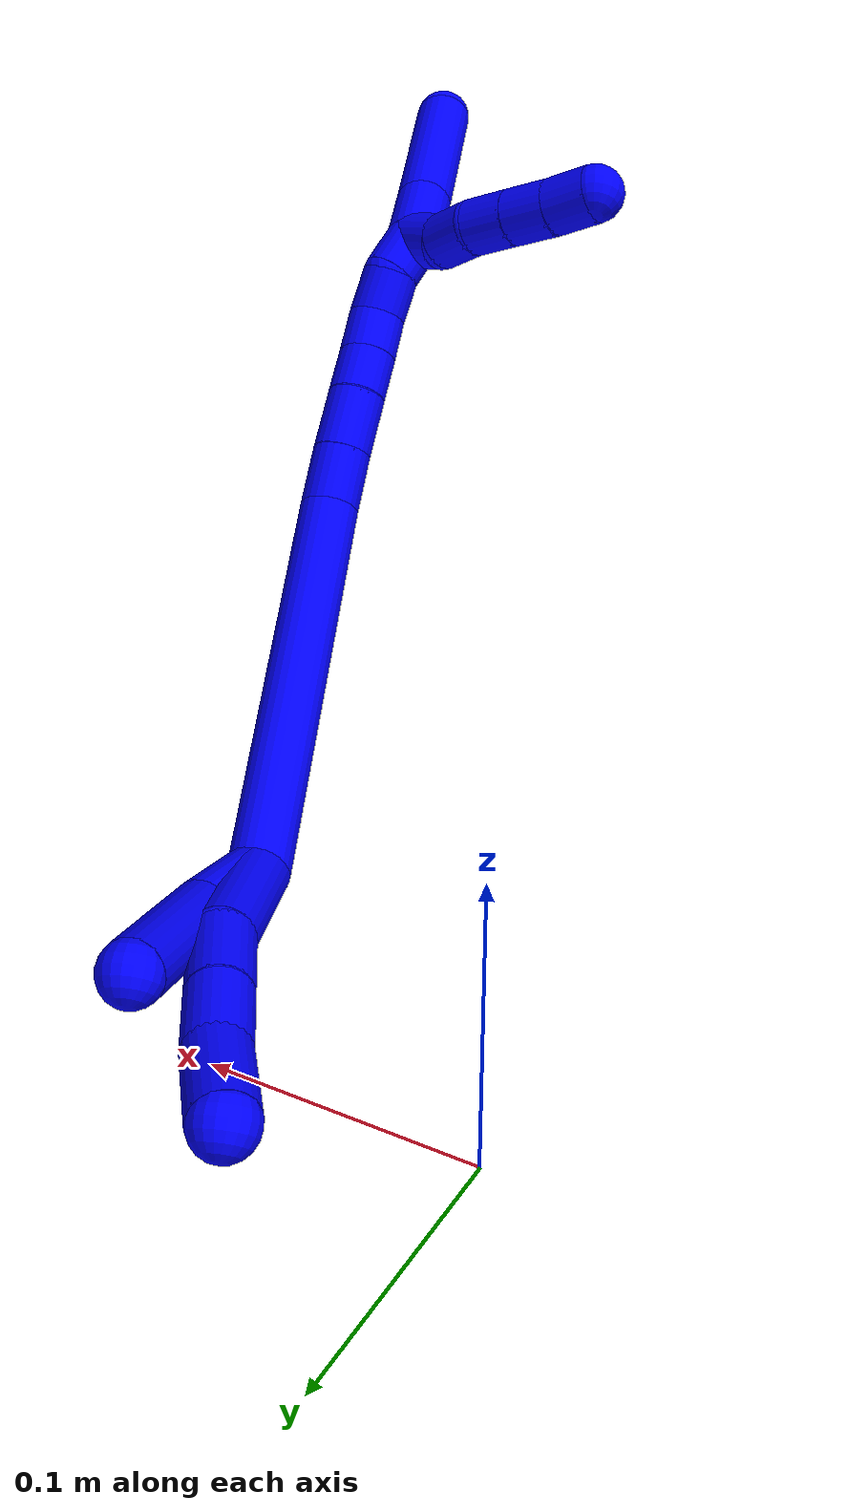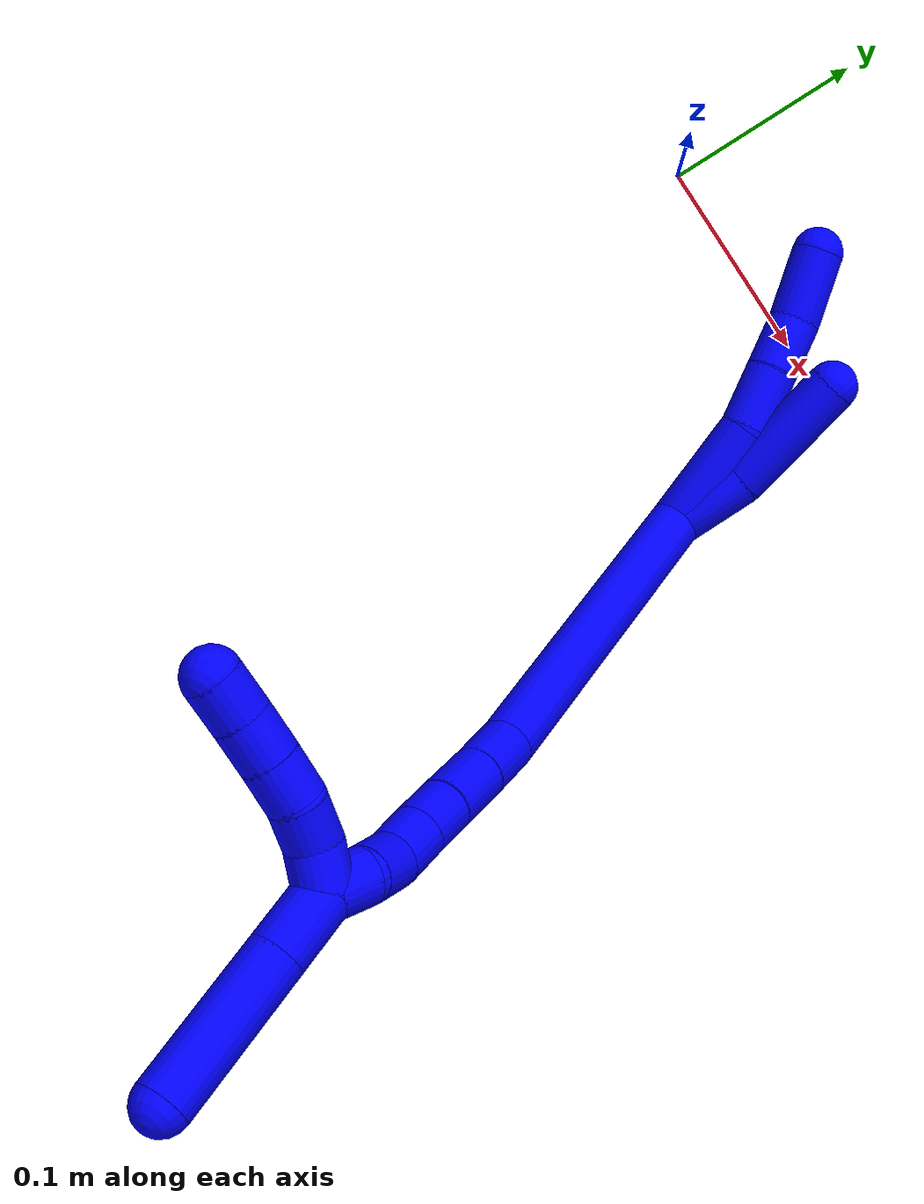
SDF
<sdf version="1.7">
 <world name="default">
  <plugin name="TubeGeneratorPlugin" filename="libtube_generator_plugin.so"/>
  <model name="photoneo_s_sensor">
   <static>1</static>
   <pose>0 0 2 1.57079 1.57079 3.14159</pose>
   <link name="link">
    <inertial><mass>0.1</mass></inertial>
    <sensor name="sensor" type="depth">
     <update_rate>30</update_rate>
     <camera>
      <horizontal_fov>1.22</horizontal_fov>
      <image><width>1920</width><height>1200</height><format>B8G8R8</format></image>
      <clip><near>0.1</near><far>4</far></clip>
      <depth_camera><output>points</output></depth_camera>
     </camera>
     <plugin name="camera_plugin" filename="libgazebo_ros_depth_camera.so">
      <baseline>0.2</baseline>
      <alwaysOn>1</alwaysOn>
      <updateRate>0.0</updateRate>
      <cameraName>camera_ir</cameraName>
      <imageTopicName>/camera/color/image_raw</imageTopicName>
      <cameraInfoTopicName>/camera/color/camera_info</cameraInfoTopicName>
      <depthImageTopicName>/camera/depth/image_raw</depthImageTopicName>
      <depthImageCameraInfoTopicName>/camera/depth/camera_info</depthImageCameraInfoTopicName>
      <pointCloudTopicName>/camera/depth/points</pointCloudTopicName>
      <frameName>fr_optical</frameName>
      <pointCloudCutoff>0.1</pointCloudCutoff>
      <pointCloudCutoffMax>2.0</pointCloudCutoffMax>
      <distortionK1>0</distortionK1>
      <distortionK2>0</distortionK2>
      <distortionK3>0</distortionK3>
      <distortionT1>0</distortionT1>
      <distortionT2>0</distortionT2>
      <CxPrime>0</CxPrime>
      <Cx>0</Cx>
      <Cy>0</Cy>
      <focalLength>0</focalLength>
      <hackBaseline>0</hackBaseline>
     </plugin>
    </sensor>
   </link>
  </model>
  <gravity>0 0 -9.8</gravity>
  <magnetic_field>6e-06 2.3e-05 -4.2e-05</magnetic_field>
  <atmosphere type="adiabatic"/>
  <physics name="default_physics" default="0" type="ode">
   <max_step_size>0.003</max_step_size>
   <real_time_factor>1</real_time_factor>
   <real_time_update_rate>1000</real_time_update_rate>
   <max_contacts>10000</max_contacts>
   <ode>
    <solver>
     <type>quick</type>
     <iters>100</iters>
     <sor>1.3</sor>
     <use_dynamic_moi_rescaling>0</use_dynamic_moi_rescaling>
    </solver>
    <constraints>
     <contact_max_correcting_vel>0</contact_max_correcting_vel>
     <contact_surface_layer>0.001</contact_surface_layer>
     <cfm>0</cfm>
     <erp>0.2</erp>
    </constraints>
   </ode>
  </physics>
  <scene><ambient>0.4 0.4 0.4 1</ambient><background>0.7 0.7 0.7 1</background><shadows>0</shadows></scene>
  <audio><device>default</device></audio>
  <spherical_coordinates>
   <surface_model>EARTH_WGS84</surface_model>
   <latitude_deg>0</latitude_deg>
   <longitude_deg>0</longitude_deg>
   <elevation>0</elevation>
   <heading_deg>0</heading_deg>
  </spherical_coordinates>
  <model name="bin">
   <static>1</static>
   <link name="bottom">
    <collision name="collision-bottom">
     <pose>0 0 -0.01 0 -0 0</pose>
     <geometry><box><size>0.8 0.6 0.02</size></box></geometry>
     <surface>
      <friction><ode><mu>100</mu><mu2>100</mu2></ode></friction>
      <contact><collide_bitmask>65535</collide_bitmask></contact>
     </surface>
    </collision>
   </link>
   <link name="west_wall">
    <collision name="collision-west_wall">
     <pose>-0.41 0 0.1 0 -0 0</pose>
     <geometry><box><size>0.02 0.6 0.2</size></box></geometry>
     <surface>
      <friction><ode><mu>100</mu><mu2>100</mu2></ode></friction>
      <contact><collide_bitmask>65535</collide_bitmask></contact>
     </surface>
    </collision>
   </link>
   <link name="east_wall">
    <collision name="collision-east_wall">
     <pose>0.41 0 0.1 0 -0 0</pose>
     <geometry><box><size>0.02 0.6 0.2</size></box></geometry>
     <surface>
      <friction><ode><mu>100</mu><mu2>100</mu2></ode></friction>
      <contact><collide_bitmask>65535</collide_bitmask></contact>
     </surface>
    </collision>
   </link>
   <link name="south_wall">
    <collision name="collision-south_wall">
     <pose>0 -0.31 0.1 0 -0 0</pose>
     <geometry><box><size>0.8 0.02 0.2</size></box></geometry>
     <surface>
      <friction><ode><mu>100</mu><mu2>100</mu2></ode></friction>
      <contact><collide_bitmask>65535</collide_bitmask></contact>
     </surface>
    </collision>
   </link>
   <link name="north_wall">
    <collision name="collision-north_wall">
     <pose>0 0.31 0.1 0 -0 0</pose>
     <geometry><box><size>0.8 0.02 0.2</size></box></geometry>
     <surface>
      <friction><ode><mu>100</mu><mu2>100</mu2></ode></friction>
      <contact><collide_bitmask>65535</collide_bitmask></contact>
     </surface>
    </collision>
   </link>
  </model>
  <model name="1">
   <static>0</static>
   <link name="1">
    <collision name="collision-cylinder-e_1_2_8">
     <pose>-0.006183 0.019629 -0.018541 -2.32771 -0.225097 0.512935</pose>
     <geometry><cylinder><radius>0.0125</radius><length>0.0554</length></cylinder></geometry>
     <surface>
      <friction><ode><mu>1.16</mu><mu2>1.16</mu2><slip1>0</slip1><slip2>0</slip2></ode></friction>
      <contact><ode><kp>1e+06</kp><kd>1</kd><max_vel>0</max_vel><min_depth>0.001</min_depth></ode></contact>
     </surface>
    </collision>
    <visual name="visual-cylinder-e_1_2_8">
     <pose>-0.006183 0.019629 -0.018541 -2.32771 -0.225097 0.512935</pose>
     <geometry><cylinder><radius>0.0125</radius><length>0.0554</length></cylinder></geometry>
     <material><ambient>0 0 1 1</ambient></material>
    </visual>
    <collision name="collision-cylinder-e_2_8_9">
     <pose>-0.018299 0.047221 -0.049178 -2.5593 -0.388859 1.16275</pose>
     <geometry><cylinder><radius>0.0125</radius><length>0.031301</length></cylinder></geometry>
     <surface>
      <friction><ode><mu>1.16</mu><mu2>1.16</mu2><slip1>0</slip1><slip2>0</slip2></ode></friction>
      <contact><ode><kp>1e+06</kp><kd>1</kd><max_vel>0</max_vel><min_depth>0.001</min_depth></ode></contact>
     </surface>
    </collision>
    <visual name="visual-cylinder-e_2_8_9">
     <pose>-0.018299 0.047221 -0.049178 -2.5593 -0.388859 1.16275</pose>
     <geometry><cylinder><radius>0.0125</radius><length>0.031301</length></cylinder></geometry>
     <material><ambient>0 0 1 1</ambient></material>
    </visual>
    <collision name="collision-cylinder-e_3_9_10">
     <pose>-0.029169 0.061439 -0.07242 -2.63035 -0.368563 1.23911</pose>
     <geometry><cylinder><radius>0.0125</radius><length>0.027404</length></cylinder></geometry>
     <surface>
      <friction><ode><mu>1.16</mu><mu2>1.16</mu2><slip1>0</slip1><slip2>0</slip2></ode></friction>
      <contact><ode><kp>1e+06</kp><kd>1</kd><max_vel>0</max_vel><min_depth>0.001</min_depth></ode></contact>
     </surface>
    </collision>
    <visual name="visual-cylinder-e_3_9_10">
     <pose>-0.029169 0.061439 -0.07242 -2.63035 -0.368563 1.23911</pose>
     <geometry><cylinder><radius>0.0125</radius><length>0.027404</length></cylinder></geometry>
     <material><ambient>0 0 1 1</ambient></material>
    </visual>
    <collision name="collision-cylinder-e_4_10_6">
     <pose>-0.042792 0.076968 -0.096242 -2.50986 -0.50524 1.33706</pose>
     <geometry><cylinder><radius>0.0125</radius><length>0.035896</length></cylinder></geometry>
     <surface>
      <friction><ode><mu>1.16</mu><mu2>1.16</mu2><slip1>0</slip1><slip2>0</slip2></ode></friction>
      <contact><ode><kp>1e+06</kp><kd>1</kd><max_vel>0</max_vel><min_depth>0.001</min_depth></ode></contact>
     </surface>
    </collision>
    <visual name="visual-cylinder-e_4_10_6">
     <pose>-0.042792 0.076968 -0.096242 -2.50986 -0.50524 1.33706</pose>
     <geometry><cylinder><radius>0.0125</radius><length>0.035896</length></cylinder></geometry>
     <material><ambient>0 0 1 1</ambient></material>
    </visual>
    <collision name="collision-cylinder-e_1_2_11">
     <pose>0.002256 0.014222 -0.012044 -2.27346 0.120443 -0.25869</pose>
     <geometry><cylinder><radius>0.0125</radius><length>0.037544</length></cylinder></geometry>
     <surface>
      <friction><ode><mu>1.16</mu><mu2>1.16</mu2><slip1>0</slip1><slip2>0</slip2></ode></friction>
      <contact><ode><kp>1e+06</kp><kd>1</kd><max_vel>0</max_vel><min_depth>0.001</min_depth></ode></contact>
     </surface>
    </collision>
    <visual name="visual-cylinder-e_1_2_11">
     <pose>0.002256 0.014222 -0.012044 -2.27346 0.120443 -0.25869</pose>
     <geometry><cylinder><radius>0.0125</radius><length>0.037544</length></cylinder></geometry>
     <material><ambient>0 0 1 1</ambient></material>
    </visual>
    <collision name="collision-cylinder-e_2_11_5">
     <pose>0.00058 0.053541 -0.042249 -2.19721 -0.126223 0.246222</pose>
     <geometry><cylinder><radius>0.0125</radius><length>0.062456</length></cylinder></geometry>
     <surface>
      <friction><ode><mu>1.16</mu><mu2>1.16</mu2><slip1>0</slip1><slip2>0</slip2></ode></friction>
      <contact><ode><kp>1e+06</kp><kd>1</kd><max_vel>0</max_vel><min_depth>0.001</min_depth></ode></contact>
     </surface>
    </collision>
    <visual name="visual-cylinder-e_2_11_5">
     <pose>0.00058 0.053541 -0.042249 -2.19721 -0.126223 0.246222</pose>
     <geometry><cylinder><radius>0.0125</radius><length>0.062456</length></cylinder></geometry>
     <material><ambient>0 0 1 1</ambient></material>
    </visual>
    <collision name="collision-cylinder-e_1_2_12">
     <pose>-0.001783 -0.004768 0.082713 0.057587 -0.021519 -0.00062</pose>
     <geometry><cylinder><radius>0.0125</radius><length>0.165739</length></cylinder></geometry>
     <surface>
      <friction><ode><mu>1.16</mu><mu2>1.16</mu2><slip1>0</slip1><slip2>0</slip2></ode></friction>
      <contact><ode><kp>1e+06</kp><kd>1</kd><max_vel>0</max_vel><min_depth>0.001</min_depth></ode></contact>
     </surface>
    </collision>
    <visual name="visual-cylinder-e_1_2_12">
     <pose>-0.001783 -0.004768 0.082713 0.057587 -0.021519 -0.00062</pose>
     <geometry><cylinder><radius>0.0125</radius><length>0.165739</length></cylinder></geometry>
     <material><ambient>0 0 1 1</ambient></material>
    </visual>
    <collision name="collision-cylinder-e_2_12_13">
     <pose>-0.005747 -0.007867 0.178193 -0.130088 -0.167776 0.010954</pose>
     <geometry><cylinder><radius>0.0125</radius><length>0.026119</length></cylinder></geometry>
     <surface>
      <friction><ode><mu>1.16</mu><mu2>1.16</mu2><slip1>0</slip1><slip2>0</slip2></ode></friction>
      <contact><ode><kp>1e+06</kp><kd>1</kd><max_vel>0</max_vel><min_depth>0.001</min_depth></ode></contact>
     </surface>
    </collision>
    <visual name="visual-cylinder-e_2_12_13">
     <pose>-0.005747 -0.007867 0.178193 -0.130088 -0.167776 0.010954</pose>
     <geometry><cylinder><radius>0.0125</radius><length>0.026119</length></cylinder></geometry>
     <material><ambient>0 0 1 1</ambient></material>
    </visual>
    <collision name="collision-cylinder-e_3_13_14">
     <pose>-0.010469 -0.004814 0.20425 -0.103637 -0.187949 0.009777</pose>
     <geometry><cylinder><radius>0.0125</radius><length>0.027202</length></cylinder></geometry>
     <surface>
      <friction><ode><mu>1.16</mu><mu2>1.16</mu2><slip1>0</slip1><slip2>0</slip2></ode></friction>
      <contact><ode><kp>1e+06</kp><kd>1</kd><max_vel>0</max_vel><min_depth>0.001</min_depth></ode></contact>
     </surface>
    </collision>
    <visual name="visual-cylinder-e_3_13_14">
     <pose>-0.010469 -0.004814 0.20425 -0.103637 -0.187949 0.009777</pose>
     <geometry><cylinder><radius>0.0125</radius><length>0.027202</length></cylinder></geometry>
     <material><ambient>0 0 1 1</ambient></material>
    </visual>
    <collision name="collision-cylinder-e_4_14_15">
     <pose>-0.014621 -0.002963 0.227468 -0.047179 -0.160676 0.003799</pose>
     <geometry><cylinder><radius>0.0125</radius><length>0.020138</length></cylinder></geometry>
     <surface>
      <friction><ode><mu>1.16</mu><mu2>1.16</mu2><slip1>0</slip1><slip2>0</slip2></ode></friction>
      <contact><ode><kp>1e+06</kp><kd>1</kd><max_vel>0</max_vel><min_depth>0.001</min_depth></ode></contact>
     </surface>
    </collision>
    <visual name="visual-cylinder-e_4_14_15">
     <pose>-0.014621 -0.002963 0.227468 -0.047179 -0.160676 0.003799</pose>
     <geometry><cylinder><radius>0.0125</radius><length>0.020138</length></cylinder></geometry>
     <material><ambient>0 0 1 1</ambient></material>
    </visual>
    <collision name="collision-cylinder-e_5_15_16">
     <pose>-0.017663 -0.001954 0.247307 -0.054422 -0.143173 0.003904</pose>
     <geometry><cylinder><radius>0.0125</radius><length>0.020056</length></cylinder></geometry>
     <surface>
      <friction><ode><mu>1.16</mu><mu2>1.16</mu2><slip1>0</slip1><slip2>0</slip2></ode></friction>
      <contact><ode><kp>1e+06</kp><kd>1</kd><max_vel>0</max_vel><min_depth>0.001</min_depth></ode></contact>
     </surface>
    </collision>
    <visual name="visual-cylinder-e_5_15_16">
     <pose>-0.017663 -0.001954 0.247307 -0.054422 -0.143173 0.003904</pose>
     <geometry><cylinder><radius>0.0125</radius><length>0.020056</length></cylinder></geometry>
     <material><ambient>0 0 1 1</ambient></material>
    </visual>
    <collision name="collision-cylinder-e_6_16_17">
     <pose>-0.022764 0.001336 0.266377 -0.291729 -0.366459 0.054433</pose>
     <geometry><cylinder><radius>0.0125</radius><length>0.020485</length></cylinder></geometry>
     <surface>
      <friction><ode><mu>1.16</mu><mu2>1.16</mu2><slip1>0</slip1><slip2>0</slip2></ode></friction>
      <contact><ode><kp>1e+06</kp><kd>1</kd><max_vel>0</max_vel><min_depth>0.001</min_depth></ode></contact>
     </surface>
    </collision>
    <visual name="visual-cylinder-e_6_16_17">
     <pose>-0.022764 0.001336 0.266377 -0.291729 -0.366459 0.054433</pose>
     <geometry><cylinder><radius>0.0125</radius><length>0.020485</length></cylinder></geometry>
     <material><ambient>0 0 1 1</ambient></material>
    </visual>
    <collision name="collision-cylinder-e_7_17_1">
     <pose>-0.030903 0.00353 0.284609 0.061198 -0.456932 -0.014234</pose>
     <geometry><cylinder><radius>0.0125</radius><length>0.020261</length></cylinder></geometry>
     <surface>
      <friction><ode><mu>1.16</mu><mu2>1.16</mu2><slip1>0</slip1><slip2>0</slip2></ode></friction>
      <contact><ode><kp>1e+06</kp><kd>1</kd><max_vel>0</max_vel><min_depth>0.001</min_depth></ode></contact>
     </surface>
    </collision>
    <visual name="visual-cylinder-e_7_17_1">
     <pose>-0.030903 0.00353 0.284609 0.061198 -0.456932 -0.014234</pose>
     <geometry><cylinder><radius>0.0125</radius><length>0.020261</length></cylinder></geometry>
     <material><ambient>0 0 1 1</ambient></material>
    </visual>
    <collision name="collision-cylinder-e_1_1_18">
     <pose>-0.04401 0.00564 0.289407 -2.58401 -1.04267 2.21688</pose>
     <geometry><cylinder><radius>0.0125</radius><length>0.02</length></cylinder></geometry>
     <surface>
      <friction><ode><mu>1.16</mu><mu2>1.16</mu2><slip1>0</slip1><slip2>0</slip2></ode></friction>
      <contact><ode><kp>1e+06</kp><kd>1</kd><max_vel>0</max_vel><min_depth>0.001</min_depth></ode></contact>
     </surface>
    </collision>
    <visual name="visual-cylinder-e_1_1_18">
     <pose>-0.04401 0.00564 0.289407 -2.58401 -1.04267 2.21688</pose>
     <geometry><cylinder><radius>0.0125</radius><length>0.02</length></cylinder></geometry>
     <material><ambient>0 0 1 1</ambient></material>
    </visual>
    <collision name="collision-cylinder-e_2_18_19">
     <pose>-0.061784 0.01221 0.283993 -1.85463 -1.15201 1.42742</pose>
     <geometry><cylinder><radius>0.0125</radius><length>0.02</length></cylinder></geometry>
     <surface>
      <friction><ode><mu>1.16</mu><mu2>1.16</mu2><slip1>0</slip1><slip2>0</slip2></ode></friction>
      <contact><ode><kp>1e+06</kp><kd>1</kd><max_vel>0</max_vel><min_depth>0.001</min_depth></ode></contact>
     </surface>
    </collision>
    <visual name="visual-cylinder-e_2_18_19">
     <pose>-0.061784 0.01221 0.283993 -1.85463 -1.15201 1.42742</pose>
     <geometry><cylinder><radius>0.0125</radius><length>0.02</length></cylinder></geometry>
     <material><ambient>0 0 1 1</ambient></material>
    </visual>
    <collision name="collision-cylinder-e_3_19_20">
     <pose>-0.080737 0.017834 0.282035 -2.01531 -1.37913 1.83475</pose>
     <geometry><cylinder><radius>0.0125</radius><length>0.02</length></cylinder></geometry>
     <surface>
      <friction><ode><mu>1.16</mu><mu2>1.16</mu2><slip1>0</slip1><slip2>0</slip2></ode></friction>
      <contact><ode><kp>1e+06</kp><kd>1</kd><max_vel>0</max_vel><min_depth>0.001</min_depth></ode></contact>
     </surface>
    </collision>
    <visual name="visual-cylinder-e_3_19_20">
     <pose>-0.080737 0.017834 0.282035 -2.01531 -1.37913 1.83475</pose>
     <geometry><cylinder><radius>0.0125</radius><length>0.02</length></cylinder></geometry>
     <material><ambient>0 0 1 1</ambient></material>
    </visual>
    <collision name="collision-cylinder-e_4_20_21">
     <pose>-0.100416 0.021056 0.280523 -2.00319 -1.40463 1.84682</pose>
     <geometry><cylinder><radius>0.0125</radius><length>0.02</length></cylinder></geometry>
     <surface>
      <friction><ode><mu>1.16</mu><mu2>1.16</mu2><slip1>0</slip1><slip2>0</slip2></ode></friction>
      <contact><ode><kp>1e+06</kp><kd>1</kd><max_vel>0</max_vel><min_depth>0.001</min_depth></ode></contact>
     </surface>
    </collision>
    <visual name="visual-cylinder-e_4_20_21">
     <pose>-0.100416 0.021056 0.280523 -2.00319 -1.40463 1.84682</pose>
     <geometry><cylinder><radius>0.0125</radius><length>0.02</length></cylinder></geometry>
     <material><ambient>0 0 1 1</ambient></material>
    </visual>
    <collision name="collision-cylinder-e_5_21_4">
     <pose>-0.120107 0.024391 0.279643 -1.67216 -1.38546 1.48603</pose>
     <geometry><cylinder><radius>0.0125</radius><length>0.02</length></cylinder></geometry>
     <surface>
      <friction><ode><mu>1.16</mu><mu2>1.16</mu2><slip1>0</slip1><slip2>0</slip2></ode></friction>
      <contact><ode><kp>1e+06</kp><kd>1</kd><max_vel>0</max_vel><min_depth>0.001</min_depth></ode></contact>
     </surface>
    </collision>
    <visual name="visual-cylinder-e_5_21_4">
     <pose>-0.120107 0.024391 0.279643 -1.67216 -1.38546 1.48603</pose>
     <geometry><cylinder><radius>0.0125</radius><length>0.02</length></cylinder></geometry>
     <material><ambient>0 0 1 1</ambient></material>
    </visual>
    <collision name="collision-cylinder-e_1_1_22">
     <pose>-0.034296 -0.001455 0.308139 0.297317 0.071082 0.01065</pose>
     <geometry><cylinder><radius>0.0125</radius><length>0.030315</length></cylinder></geometry>
     <surface>
      <friction><ode><mu>1.16</mu><mu2>1.16</mu2><slip1>0</slip1><slip2>0</slip2></ode></friction>
      <contact><ode><kp>1e+06</kp><kd>1</kd><max_vel>0</max_vel><min_depth>0.001</min_depth></ode></contact>
     </surface>
    </collision>
    <visual name="visual-cylinder-e_1_1_22">
     <pose>-0.034296 -0.001455 0.308139 0.297317 0.071082 0.01065</pose>
     <geometry><cylinder><radius>0.0125</radius><length>0.030315</length></cylinder></geometry>
     <material><ambient>0 0 1 1</ambient></material>
    </visual>
    <collision name="collision-cylinder-e_2_22_3">
     <pose>-0.031315 -0.014443 0.356316 0.248554 0.054703 0.006835</pose>
     <geometry><cylinder><radius>0.0125</radius><length>0.069685</length></cylinder></geometry>
     <surface>
      <friction><ode><mu>1.16</mu><mu2>1.16</mu2><slip1>0</slip1><slip2>0</slip2></ode></friction>
      <contact><ode><kp>1e+06</kp><kd>1</kd><max_vel>0</max_vel><min_depth>0.001</min_depth></ode></contact>
     </surface>
    </collision>
    <visual name="visual-cylinder-e_2_22_3">
     <pose>-0.031315 -0.014443 0.356316 0.248554 0.054703 0.006835</pose>
     <geometry><cylinder><radius>0.0125</radius><length>0.069685</length></cylinder></geometry>
     <material><ambient>0 0 1 1</ambient></material>
    </visual>
    <collision name="collision-sphere-3">
     <pose>-0.02941 -0.023002 0.390037 0 -0 0</pose>
     <geometry><sphere><radius>0.0125</radius></sphere></geometry>
     <surface>
      <friction><ode><mu>1.16</mu><mu2>1.16</mu2><slip1>0</slip1><slip2>0</slip2></ode></friction>
      <contact><ode><kp>1e+06</kp><kd>1</kd><max_vel>0</max_vel><min_depth>0.001</min_depth></ode></contact>
     </surface>
    </collision>
    <visual name="visual-sphere-3">
     <pose>-0.02941 -0.023002 0.390037 0 -0 0</pose>
     <geometry><sphere><radius>0.0125</radius></sphere></geometry>
     <material><ambient>0 0 1 1</ambient></material>
    </visual>
    <collision name="collision-sphere-22">
     <pose>-0.03322 -0.005885 0.322595 0 -0 0</pose>
     <geometry><sphere><radius>0.0125</radius></sphere></geometry>
     <surface>
      <friction><ode><mu>1.16</mu><mu2>1.16</mu2><slip1>0</slip1><slip2>0</slip2></ode></friction>
      <contact><ode><kp>1e+06</kp><kd>1</kd><max_vel>0</max_vel><min_depth>0.001</min_depth></ode></contact>
     </surface>
    </collision>
    <visual name="visual-sphere-22">
     <pose>-0.03322 -0.005885 0.322595 0 -0 0</pose>
     <geometry><sphere><radius>0.0125</radius></sphere></geometry>
     <material><ambient>0 0 1 1</ambient></material>
    </visual>
    <collision name="collision-sphere-4">
     <pose>-0.129935 0.026224 0.279456 0 -0 0</pose>
     <geometry><sphere><radius>0.0125</radius></sphere></geometry>
     <surface>
      <friction><ode><mu>1.16</mu><mu2>1.16</mu2><slip1>0</slip1><slip2>0</slip2></ode></friction>
      <contact><ode><kp>1e+06</kp><kd>1</kd><max_vel>0</max_vel><min_depth>0.001</min_depth></ode></contact>
     </surface>
    </collision>
    <visual name="visual-sphere-4">
     <pose>-0.129935 0.026224 0.279456 0 -0 0</pose>
     <geometry><sphere><radius>0.0125</radius></sphere></geometry>
     <material><ambient>0 0 1 1</ambient></material>
    </visual>
    <collision name="collision-sphere-21">
     <pose>-0.110278 0.022558 0.279829 0 -0 0</pose>
     <geometry><sphere><radius>0.0125</radius></sphere></geometry>
     <surface>
      <friction><ode><mu>1.16</mu><mu2>1.16</mu2><slip1>0</slip1><slip2>0</slip2></ode></friction>
      <contact><ode><kp>1e+06</kp><kd>1</kd><max_vel>0</max_vel><min_depth>0.001</min_depth></ode></contact>
     </surface>
    </collision>
    <visual name="visual-sphere-21">
     <pose>-0.110278 0.022558 0.279829 0 -0 0</pose>
     <geometry><sphere><radius>0.0125</radius></sphere></geometry>
     <material><ambient>0 0 1 1</ambient></material>
    </visual>
    <collision name="collision-sphere-20">
     <pose>-0.090553 0.019554 0.281216 0 -0 0</pose>
     <geometry><sphere><radius>0.0125</radius></sphere></geometry>
     <surface>
      <friction><ode><mu>1.16</mu><mu2>1.16</mu2><slip1>0</slip1><slip2>0</slip2></ode></friction>
      <contact><ode><kp>1e+06</kp><kd>1</kd><max_vel>0</max_vel><min_depth>0.001</min_depth></ode></contact>
     </surface>
    </collision>
    <visual name="visual-sphere-20">
     <pose>-0.090553 0.019554 0.281216 0 -0 0</pose>
     <geometry><sphere><radius>0.0125</radius></sphere></geometry>
     <material><ambient>0 0 1 1</ambient></material>
    </visual>
    <collision name="collision-sphere-11">
     <pose>0.004511 0.028443 -0.024087 0 -0 0</pose>
     <geometry><sphere><radius>0.0125</radius></sphere></geometry>
     <surface>
      <friction><ode><mu>1.16</mu><mu2>1.16</mu2><slip1>0</slip1><slip2>0</slip2></ode></friction>
      <contact><ode><kp>1e+06</kp><kd>1</kd><max_vel>0</max_vel><min_depth>0.001</min_depth></ode></contact>
     </surface>
    </collision>
    <visual name="visual-sphere-11">
     <pose>0.004511 0.028443 -0.024087 0 -0 0</pose>
     <geometry><sphere><radius>0.0125</radius></sphere></geometry>
     <material><ambient>0 0 1 1</ambient></material>
    </visual>
    <collision name="collision-sphere-6">
     <pose>-0.05148 0.086242 -0.108917 0 -0 0</pose>
     <geometry><sphere><radius>0.0125</radius></sphere></geometry>
     <surface>
      <friction><ode><mu>1.16</mu><mu2>1.16</mu2><slip1>0</slip1><slip2>0</slip2></ode></friction>
      <contact><ode><kp>1e+06</kp><kd>1</kd><max_vel>0</max_vel><min_depth>0.001</min_depth></ode></contact>
     </surface>
    </collision>
    <visual name="visual-sphere-6">
     <pose>-0.05148 0.086242 -0.108917 0 -0 0</pose>
     <geometry><sphere><radius>0.0125</radius></sphere></geometry>
     <material><ambient>0 0 1 1</ambient></material>
    </visual>
    <collision name="collision-sphere-10">
     <pose>-0.034105 0.067693 -0.083568 0 -0 0</pose>
     <geometry><sphere><radius>0.0125</radius></sphere></geometry>
     <surface>
      <friction><ode><mu>1.16</mu><mu2>1.16</mu2><slip1>0</slip1><slip2>0</slip2></ode></friction>
      <contact><ode><kp>1e+06</kp><kd>1</kd><max_vel>0</max_vel><min_depth>0.001</min_depth></ode></contact>
     </surface>
    </collision>
    <visual name="visual-sphere-10">
     <pose>-0.034105 0.067693 -0.083568 0 -0 0</pose>
     <geometry><sphere><radius>0.0125</radius></sphere></geometry>
     <material><ambient>0 0 1 1</ambient></material>
    </visual>
    <collision name="collision-sphere-9">
     <pose>-0.024232 0.055185 -0.061273 0 -0 0</pose>
     <geometry><sphere><radius>0.0125</radius></sphere></geometry>
     <surface>
      <friction><ode><mu>1.16</mu><mu2>1.16</mu2><slip1>0</slip1><slip2>0</slip2></ode></friction>
      <contact><ode><kp>1e+06</kp><kd>1</kd><max_vel>0</max_vel><min_depth>0.001</min_depth></ode></contact>
     </surface>
    </collision>
    <visual name="visual-sphere-9">
     <pose>-0.024232 0.055185 -0.061273 0 -0 0</pose>
     <geometry><sphere><radius>0.0125</radius></sphere></geometry>
     <material><ambient>0 0 1 1</ambient></material>
    </visual>
    <collision name="collision-sphere-2">
     <geometry><sphere><radius>0.0125</radius></sphere></geometry>
     <surface>
      <friction><ode><mu>1.16</mu><mu2>1.16</mu2><slip1>0</slip1><slip2>0</slip2></ode></friction>
      <contact><ode><kp>1e+06</kp><kd>1</kd><max_vel>0</max_vel><min_depth>0.001</min_depth></ode></contact>
     </surface>
    </collision>
    <visual name="visual-sphere-2">
     <geometry><sphere><radius>0.0125</radius></sphere></geometry>
     <material><ambient>0 0 1 1</ambient></material>
    </visual>
    <collision name="collision-sphere-19">
     <pose>-0.07092 0.016114 0.282854 0 -0 0</pose>
     <geometry><sphere><radius>0.0125</radius></sphere></geometry>
     <surface>
      <friction><ode><mu>1.16</mu><mu2>1.16</mu2><slip1>0</slip1><slip2>0</slip2></ode></friction>
      <contact><ode><kp>1e+06</kp><kd>1</kd><max_vel>0</max_vel><min_depth>0.001</min_depth></ode></contact>
     </surface>
    </collision>
    <visual name="visual-sphere-19">
     <pose>-0.07092 0.016114 0.282854 0 -0 0</pose>
     <geometry><sphere><radius>0.0125</radius></sphere></geometry>
     <material><ambient>0 0 1 1</ambient></material>
    </visual>
    <collision name="collision-sphere-8">
     <pose>-0.012365 0.039257 -0.037082 0 -0 0</pose>
     <geometry><sphere><radius>0.0125</radius></sphere></geometry>
     <surface>
      <friction><ode><mu>1.16</mu><mu2>1.16</mu2><slip1>0</slip1><slip2>0</slip2></ode></friction>
      <contact><ode><kp>1e+06</kp><kd>1</kd><max_vel>0</max_vel><min_depth>0.001</min_depth></ode></contact>
     </surface>
    </collision>
    <visual name="visual-sphere-8">
     <pose>-0.012365 0.039257 -0.037082 0 -0 0</pose>
     <geometry><sphere><radius>0.0125</radius></sphere></geometry>
     <material><ambient>0 0 1 1</ambient></material>
    </visual>
    <collision name="collision-sphere-5">
     <pose>-0.003351 0.078638 -0.06041 0 -0 0</pose>
     <geometry><sphere><radius>0.0125</radius></sphere></geometry>
     <surface>
      <friction><ode><mu>1.16</mu><mu2>1.16</mu2><slip1>0</slip1><slip2>0</slip2></ode></friction>
      <contact><ode><kp>1e+06</kp><kd>1</kd><max_vel>0</max_vel><min_depth>0.001</min_depth></ode></contact>
     </surface>
    </collision>
    <visual name="visual-sphere-5">
     <pose>-0.003351 0.078638 -0.06041 0 -0 0</pose>
     <geometry><sphere><radius>0.0125</radius></sphere></geometry>
     <material><ambient>0 0 1 1</ambient></material>
    </visual>
    <collision name="collision-sphere-12">
     <pose>-0.003566 -0.009537 0.165426 0 -0 0</pose>
     <geometry><sphere><radius>0.0125</radius></sphere></geometry>
     <surface>
      <friction><ode><mu>1.16</mu><mu2>1.16</mu2><slip1>0</slip1><slip2>0</slip2></ode></friction>
      <contact><ode><kp>1e+06</kp><kd>1</kd><max_vel>0</max_vel><min_depth>0.001</min_depth></ode></contact>
     </surface>
    </collision>
    <visual name="visual-sphere-12">
     <pose>-0.003566 -0.009537 0.165426 0 -0 0</pose>
     <geometry><sphere><radius>0.0125</radius></sphere></geometry>
     <material><ambient>0 0 1 1</ambient></material>
    </visual>
    <collision name="collision-sphere-13">
     <pose>-0.007928 -0.006196 0.19096 0 -0 0</pose>
     <geometry><sphere><radius>0.0125</radius></sphere></geometry>
     <surface>
      <friction><ode><mu>1.16</mu><mu2>1.16</mu2><slip1>0</slip1><slip2>0</slip2></ode></friction>
      <contact><ode><kp>1e+06</kp><kd>1</kd><max_vel>0</max_vel><min_depth>0.001</min_depth></ode></contact>
     </surface>
    </collision>
    <visual name="visual-sphere-13">
     <pose>-0.007928 -0.006196 0.19096 0 -0 0</pose>
     <geometry><sphere><radius>0.0125</radius></sphere></geometry>
     <material><ambient>0 0 1 1</ambient></material>
    </visual>
    <collision name="collision-sphere-14">
     <pose>-0.01301 -0.003432 0.21754 0 -0 0</pose>
     <geometry><sphere><radius>0.0125</radius></sphere></geometry>
     <surface>
      <friction><ode><mu>1.16</mu><mu2>1.16</mu2><slip1>0</slip1><slip2>0</slip2></ode></friction>
      <contact><ode><kp>1e+06</kp><kd>1</kd><max_vel>0</max_vel><min_depth>0.001</min_depth></ode></contact>
     </surface>
    </collision>
    <visual name="visual-sphere-14">
     <pose>-0.01301 -0.003432 0.21754 0 -0 0</pose>
     <geometry><sphere><radius>0.0125</radius></sphere></geometry>
     <material><ambient>0 0 1 1</ambient></material>
    </visual>
    <collision name="collision-sphere-15">
     <pose>-0.016232 -0.002494 0.237397 0 -0 0</pose>
     <geometry><sphere><radius>0.0125</radius></sphere></geometry>
     <surface>
      <friction><ode><mu>1.16</mu><mu2>1.16</mu2><slip1>0</slip1><slip2>0</slip2></ode></friction>
      <contact><ode><kp>1e+06</kp><kd>1</kd><max_vel>0</max_vel><min_depth>0.001</min_depth></ode></contact>
     </surface>
    </collision>
    <visual name="visual-sphere-15">
     <pose>-0.016232 -0.002494 0.237397 0 -0 0</pose>
     <geometry><sphere><radius>0.0125</radius></sphere></geometry>
     <material><ambient>0 0 1 1</ambient></material>
    </visual>
    <collision name="collision-sphere-16">
     <pose>-0.019094 -0.001414 0.257218 0 -0 0</pose>
     <geometry><sphere><radius>0.0125</radius></sphere></geometry>
     <surface>
      <friction><ode><mu>1.16</mu><mu2>1.16</mu2><slip1>0</slip1><slip2>0</slip2></ode></friction>
      <contact><ode><kp>1e+06</kp><kd>1</kd><max_vel>0</max_vel><min_depth>0.001</min_depth></ode></contact>
     </surface>
    </collision>
    <visual name="visual-sphere-16">
     <pose>-0.019094 -0.001414 0.257218 0 -0 0</pose>
     <geometry><sphere><radius>0.0125</radius></sphere></geometry>
     <material><ambient>0 0 1 1</ambient></material>
    </visual>
    <collision name="collision-sphere-17">
     <pose>-0.026434 0.004086 0.275535 0 -0 0</pose>
     <geometry><sphere><radius>0.0125</radius></sphere></geometry>
     <surface>
      <friction><ode><mu>1.16</mu><mu2>1.16</mu2><slip1>0</slip1><slip2>0</slip2></ode></friction>
      <contact><ode><kp>1e+06</kp><kd>1</kd><max_vel>0</max_vel><min_depth>0.001</min_depth></ode></contact>
     </surface>
    </collision>
    <visual name="visual-sphere-17">
     <pose>-0.026434 0.004086 0.275535 0 -0 0</pose>
     <geometry><sphere><radius>0.0125</radius></sphere></geometry>
     <material><ambient>0 0 1 1</ambient></material>
    </visual>
    <collision name="collision-sphere-1">
     <pose>-0.035373 0.002974 0.293683 0 -0 0</pose>
     <geometry><sphere><radius>0.0125</radius></sphere></geometry>
     <surface>
      <friction><ode><mu>1.16</mu><mu2>1.16</mu2><slip1>0</slip1><slip2>0</slip2></ode></friction>
      <contact><ode><kp>1e+06</kp><kd>1</kd><max_vel>0</max_vel><min_depth>0.001</min_depth></ode></contact>
     </surface>
    </collision>
    <visual name="visual-sphere-1">
     <pose>-0.035373 0.002974 0.293683 0 -0 0</pose>
     <geometry><sphere><radius>0.0125</radius></sphere></geometry>
     <material><ambient>0 0 1 1</ambient></material>
    </visual>
    <collision name="collision-sphere-18">
     <pose>-0.052648 0.008307 0.285131 0 -0 0</pose>
     <geometry><sphere><radius>0.0125</radius></sphere></geometry>
     <surface>
      <friction><ode><mu>1.16</mu><mu2>1.16</mu2><slip1>0</slip1><slip2>0</slip2></ode></friction>
      <contact><ode><kp>1e+06</kp><kd>1</kd><max_vel>0</max_vel><min_depth>0.001</min_depth></ode></contact>
     </surface>
    </collision>
    <visual name="visual-sphere-18">
     <pose>-0.052648 0.008307 0.285131 0 -0 0</pose>
     <geometry><sphere><radius>0.0125</radius></sphere></geometry>
     <material><ambient>0 0 1 1</ambient></material>
    </visual>
    <inertial>
     <pose>-0.022619 0.01378 0.128093 0 -0 0</pose>
     <mass>0.75</mass>
     <inertia>
      <ixx>0.000485</ixx>
      <ixy>0</ixy>
      <ixz>0</ixz>
      <iyy>0.000448</iyy>
      <iyz>0</iyz>
      <izz>3.1e-05</izz>
     </inertia>
    </inertial>
   </link>
   <pose>0.143333 -0.093456 0.0115 0.818282 0.248945 0.153336</pose>
  </model>
 </world>
</sdf>
